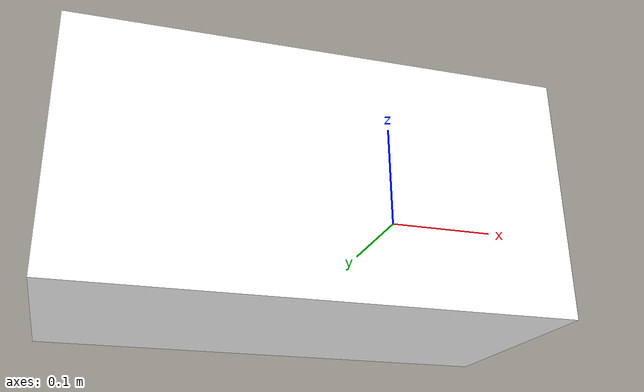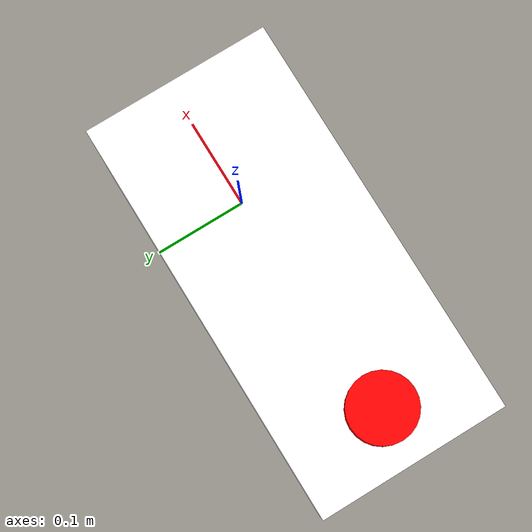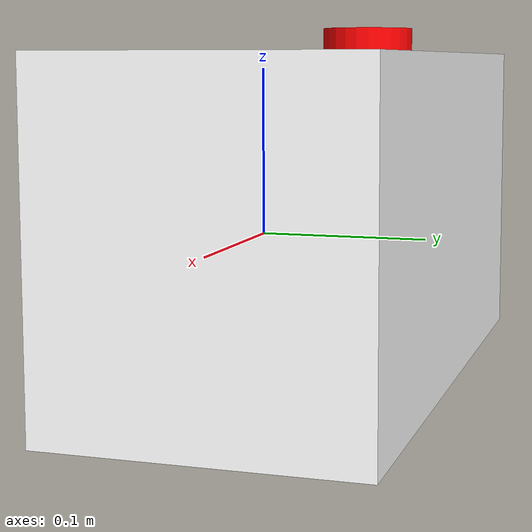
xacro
<?xml version="1.0"?>
<robot xmlns:xacro="http://www.ros.org/wiki/xacro"  name="robot">

<xacro:include filename="inertial_macros.xacro" />
<xacro:include filename="lidar.xacro" />

<material name="white">
    <color rgba="1 1 1 1"/>
</material>

<material name="orange">
    <color rgba="1 0.3 0.1 1"/>
</material>

<material name="blue">
    <color rgba="0.2 0.2 1 1"/>
</material>

<material name="black">
    <color rgba="0 0 0 1"/>
</material>

<!-- BASE LINK -->

<link name="base_link">
</link>

<!-- BASE_FOOTPRINT LINK -->

<joint name="base_footprint_joint" type="fixed">
    <parent link="base_link"/>
    <child link="base_footprint"/>
    <origin xyz="0 0 0" rpy="0 0 0"/>
</joint>

<link name="base_footprint">
</link>

<!-- CAMERA LINK -->
<joint name="oak-d-base-frame_joint" type="fixed">
    <parent link="base_link"/>
    <child link="oak-d-base-frame"/>
    <origin xyz="0.158 0 0.120" rpy="0 0 0"/>
</joint>

<link name="oak-d-base-frame">
</link>

<!--
Width: 433mm
Length: 433mm
Height:
Lidar position from center:158 from middle
Is Lidar centered? Yes
Camera position: Exactly On Edge
IMU position: 60mm from center
-->

<!-- CHASSIS LINK -->

<joint name="chassis_joint" type="fixed">
    <parent link="base_link"/>
    <child link="chassis"/>
    <origin xyz="-0.1 0 0"/>
</joint>

<link name="chassis">
    <visual>
        <origin xyz="0.0 0.0 0.0" rpy="0 0 0"/>
        <geometry>
            <box size="0.433 0.200 0.220"/>
        </geometry>
        <material name="white"/>
    </visual>
    <collision>
        <origin xyz="0.15 0 0.075" rpy="0 0 0"/>
        <geometry>
            <box size="0.3 0.3 0.15"/>
        </geometry>
    </collision>
    <xacro:inertial_box mass="0.5" x="0.3" y="0.3" z="0.15">
        <origin xyz="0.15 0 0.075" rpy="0 0 0"/>
    </xacro:inertial_box>
</link>

<!-- LEFT WHEEL -->

<!-- RIGHT WHEEL -->

<!-- CASTER WHEEL -->

</robot>

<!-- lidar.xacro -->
<robot xmlns:xacro="http://www.ros.org/wiki/xacro">

<!--
Width: 200mm
Length: 433mm
Height:
Lidar position from center:158 from middle
Is Lidar centered? Yes
Camera position: Exactly On Edge
IMU position: 60mm from center
-->

    <material name="red">
        <color rgba="1 0 0 1"/>
    </material>

    <joint name="laser_joint" type="fixed">
        <parent link="chassis"/>
        <child link="laser_frame"/>
        <origin xyz="-0.158 0 0.120" rpy="0 0 0"/>
    </joint>

    <link name="laser_frame">
        <visual>
            <geometry>
                <cylinder radius="0.035" length="0.02"/>
            </geometry>
            <material name="red"/>
        </visual>
        <collision>
            <geometry>
                <cylinder radius="0.05" length="0.04"/>
            </geometry>
        </collision>
        <xacro:inertial_cylinder mass="0.1" length="0.04" radius="0.05">
            <origin xyz="0 0 0" rpy="0 0 0"/>
        </xacro:inertial_cylinder>
    </link>
</robot>
